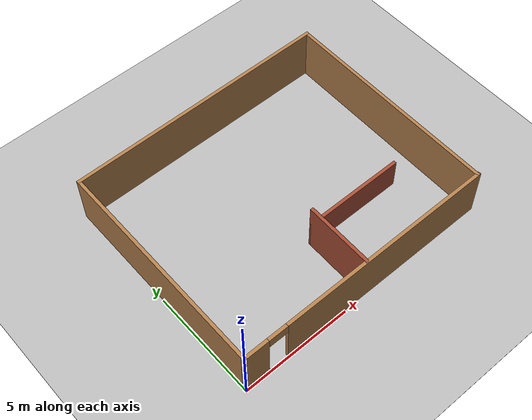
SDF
<sdf version="1.7">
 <world name="default">
  <light name="sun" type="directional">
   <pose>0 0 10 0 -0 0</pose>
   <diffuse>0.8 0.8 0.8 1</diffuse>
   <specular>0.2 0.2 0.2 1</specular>
   <attenuation>
    <range>1000</range>
    <constant>0.9</constant>
    <linear>0.01</linear>
    <quadratic>0.001</quadratic>
   </attenuation>
   <direction>-0.5 0.1 -0.9</direction>
   <spot><inner_angle>0</inner_angle><outer_angle>0</outer_angle><falloff>0</falloff></spot>
  </light>
  <model name="ground_plane">
   <static>1</static>
   <link name="link">
    <collision name="collision">
     <geometry><plane><normal>0 0 1</normal><size>100 100</size></plane></geometry>
     <surface><friction><ode><mu>100</mu><mu2>50</mu2></ode></friction></surface>
    </collision>
    <visual name="visual">
     <cast_shadows>0</cast_shadows>
     <geometry><plane><normal>0 0 1</normal><size>100 100</size></plane></geometry>
     <material>
      <script><uri>file://media/materials/scripts/gazebo.material</uri><name>Gazebo/Grey</name></script>
     </material>
    </visual>
   </link>
  </model>
  <gravity>0 0 -9.8</gravity>
  <magnetic_field>6e-06 2.3e-05 -4.2e-05</magnetic_field>
  <atmosphere type="adiabatic"/>
  <physics type="ode">
   <max_step_size>0.001</max_step_size>
   <real_time_factor>1</real_time_factor>
   <real_time_update_rate>1000</real_time_update_rate>
  </physics>
  <scene><ambient>0.4 0.4 0.4 1</ambient><background>0.7 0.7 0.7 1</background><shadows>1</shadows></scene>
  <audio><device>default</device></audio>
  <spherical_coordinates>
   <surface_model>EARTH_WGS84</surface_model>
   <latitude_deg>0</latitude_deg>
   <longitude_deg>0</longitude_deg>
   <elevation>0</elevation>
   <heading_deg>0</heading_deg>
  </spherical_coordinates>
  <model name="french_door_cafe">
   <pose>6.09427 5.1215 0 0 -0 0</pose>
   <link name="Wall_11">
    <collision name="Wall_11_Collision">
     <geometry><box><size>12.15 0.15 2.5</size></box></geometry>
     <pose>0 0 1.25 0 -0 0</pose>
    </collision>
    <visual name="Wall_11_Visual">
     <pose>0 0 1.25 0 -0 0</pose>
     <geometry><box><size>12.15 0.15 2.5</size></box></geometry>
     <material>
      <script><uri>file://media/materials/scripts/gazebo.material</uri><name>Gazebo/Wood</name></script>
      <ambient>1 1 1 1</ambient>
     </material>
     <meta><layer>0</layer></meta>
    </visual>
    <pose>-0.015295 5.0153 0 0 -0 3.14159</pose>
   </link>
   <link name="Wall_13">
    <collision name="Wall_13_Collision">
     <geometry><box><size>4.65 0.15 1.5</size></box></geometry>
     <pose>0 0 0.75 0 -0 0</pose>
    </collision>
    <visual name="Wall_13_Visual">
     <pose>0 0 0.75 0 -0 0</pose>
     <geometry><box><size>4.65 0.15 1.5</size></box></geometry>
     <material>
      <script><uri>file://media/materials/scripts/gazebo.material</uri><name>Gazebo/Bricks</name></script>
      <ambient>1 1 1 1</ambient>
     </material>
     <meta><layer>0</layer></meta>
    </visual>
    <pose>2.2347 -1.9847 0 0 -0 0</pose>
   </link>
   <link name="Wall_16">
    <collision name="Wall_16_Collision">
     <geometry><box><size>3.1501 0.15 2.5</size></box></geometry>
     <pose>0 0 1.25 0 -0 0</pose>
    </collision>
    <visual name="Wall_16_Visual">
     <pose>0 0 1.25 0 -0 0</pose>
     <geometry><box><size>3.1501 0.15 2.5</size></box></geometry>
     <material>
      <script><uri>file://media/materials/scripts/gazebo.material</uri><name>Gazebo/Bricks</name></script>
      <ambient>1 1 1 1</ambient>
     </material>
     <meta><layer>0</layer></meta>
    </visual>
    <pose>-0.027794 -3.4847 0 0 -0 -1.57913</pose>
   </link>
   <link name="Wall_2">
    <collision name="Wall_2_Collision">
     <geometry><box><size>10.15 0.15 2.5</size></box></geometry>
     <pose>0 0 1.25 0 -0 0</pose>
    </collision>
    <visual name="Wall_2_Visual">
     <pose>0 0 1.25 0 -0 0</pose>
     <geometry><box><size>10.15 0.15 2.5</size></box></geometry>
     <material>
      <script><uri>file://media/materials/scripts/gazebo.material</uri><name>Gazebo/Wood</name></script>
      <ambient>1 1 1 1</ambient>
     </material>
     <meta><layer>0</layer></meta>
    </visual>
    <pose>-6.0153 0.015295 0 0 -0 1.5708</pose>
   </link>
   <link name="Wall_4">
    <collision name="Wall_4_Collision">
     <geometry><box><size>0.18059 0.15 2.5</size></box></geometry>
     <pose>0 0 1.25 0 -0 0</pose>
    </collision>
    <visual name="Wall_4_Visual">
     <pose>0 0 1.25 0 -0 0</pose>
     <geometry><box><size>0.18059 0.15 2.5</size></box></geometry>
     <material>
      <script><uri>file://media/materials/scripts/gazebo.material</uri><name>Gazebo/Grey</name></script>
      <ambient>1 1 1 1</ambient>
     </material>
     <meta><layer>0</layer></meta>
    </visual>
    <pose>-6.0153 -5 0 0 -0 -1.5708</pose>
   </link>
   <link name="Wall_6">
    <pose>0.015295 -5.0153 0 0 -0 0</pose>
    <visual name="Wall_6_Visual_0">
     <pose>-5.50339 0 1.25 0 -0 0</pose>
     <geometry><box><size>1.14322 0.15 2.5</size></box></geometry>
     <material>
      <script><uri>file://media/materials/scripts/gazebo.material</uri><name>Gazebo/Wood</name></script>
      <ambient>1 1 1 1</ambient>
     </material>
     <meta><layer>0</layer></meta>
    </visual>
    <collision name="Wall_6_Collision_0">
     <geometry><box><size>1.14322 0.15 2.5</size></box></geometry>
     <pose>-5.50339 0 1.25 0 -0 0</pose>
    </collision>
    <visual name="Wall_6_Visual_1">
     <pose>1.02161 0 1.25 0 -0 0</pose>
     <geometry><box><size>10.1068 0.15 2.5</size></box></geometry>
     <material>
      <script><uri>file://media/materials/scripts/gazebo.material</uri><name>Gazebo/Wood</name></script>
      <ambient>1 1 1 1</ambient>
     </material>
     <meta><layer>0</layer></meta>
    </visual>
    <collision name="Wall_6_Collision_1">
     <geometry><box><size>10.1068 0.15 2.5</size></box></geometry>
     <pose>1.02161 0 1.25 0 -0 0</pose>
    </collision>
    <visual name="Wall_6_Visual_2">
     <pose>-4.48178 0 2.25 0 -0 0</pose>
     <geometry><box><size>0.9 0.15 0.5</size></box></geometry>
     <material>
      <script><uri>file://media/materials/scripts/gazebo.material</uri><name>Gazebo/Wood</name></script>
      <ambient>1 1 1 1</ambient>
     </material>
     <meta><layer>0</layer></meta>
    </visual>
    <collision name="Wall_6_Collision_2">
     <geometry><box><size>0.9 0.15 0.5</size></box></geometry>
     <pose>-4.48178 0 2.25 0 -0 0</pose>
    </collision>
   </link>
   <link name="Wall_9">
    <collision name="Wall_9_Collision">
     <geometry><box><size>10.1806 0.15 2.5</size></box></geometry>
     <pose>0 0 1.25 0 -0 0</pose>
    </collision>
    <visual name="Wall_9_Visual">
     <pose>0 0 1.25 0 -0 0</pose>
     <geometry><box><size>10.1806 0.15 2.5</size></box></geometry>
     <material>
      <script><uri>file://media/materials/scripts/gazebo.material</uri><name>Gazebo/Wood</name></script>
      <ambient>1 1 1 1</ambient>
     </material>
     <meta><layer>0</layer></meta>
    </visual>
    <pose>5.9847 0 0 0 -0 1.5708</pose>
   </link>
   <static>1</static>
  </model>
  <light name="user_point_light_0" type="point">
   <pose>2.67644 7.07419 1 0 -0 0</pose>
   <diffuse>0.5 0.5 0.5 1</diffuse>
   <specular>0.1 0.1 0.1 1</specular>
   <attenuation>
    <range>20</range>
    <constant>0.5</constant>
    <linear>0.01</linear>
    <quadratic>0.001</quadratic>
   </attenuation>
   <cast_shadows>0</cast_shadows>
   <direction>0 0 -1</direction>
   <spot><inner_angle>0</inner_angle><outer_angle>0</outer_angle><falloff>0</falloff></spot>
  </light>
  <light name="user_point_light_1" type="point">
   <pose>5.55701 7.00976 1 0 -0 0</pose>
   <diffuse>0.5 0.5 0.5 1</diffuse>
   <specular>0.1 0.1 0.1 1</specular>
   <attenuation>
    <range>20</range>
    <constant>0.5</constant>
    <linear>0.01</linear>
    <quadratic>0.001</quadratic>
   </attenuation>
   <cast_shadows>0</cast_shadows>
   <direction>0 0 -1</direction>
   <spot><inner_angle>0</inner_angle><outer_angle>0</outer_angle><falloff>0</falloff></spot>
  </light>
  <light name="user_point_light_2" type="point">
   <pose>8.49214 7.07362 1 0 -0 0</pose>
   <diffuse>0.5 0.5 0.5 1</diffuse>
   <specular>0.1 0.1 0.1 1</specular>
   <attenuation>
    <range>20</range>
    <constant>0.5</constant>
    <linear>0.01</linear>
    <quadratic>0.001</quadratic>
   </attenuation>
   <cast_shadows>0</cast_shadows>
   <direction>0 0 -1</direction>
   <spot><inner_angle>0</inner_angle><outer_angle>0</outer_angle><falloff>0</falloff></spot>
  </light>
  <light name="user_point_light_3" type="point">
   <pose>8.17363 0.848798 1 0 -0 0</pose>
   <diffuse>0.5 0.5 0.5 1</diffuse>
   <specular>0.1 0.1 0.1 1</specular>
   <attenuation>
    <range>20</range>
    <constant>0.5</constant>
    <linear>0.01</linear>
    <quadratic>0.001</quadratic>
   </attenuation>
   <cast_shadows>0</cast_shadows>
   <direction>0 0 -1</direction>
   <spot><inner_angle>0</inner_angle><outer_angle>0</outer_angle><falloff>0</falloff></spot>
  </light>
  <model name="Floor">
   <link name="main">
    <pose>0 0 0.01 0 -0 0</pose>
    <collision name="main_Collision"><geometry><box><size>40 40 0.01</size></box></geometry></collision>
    <visual name="main_Visual">
     <geometry><box><size>40 40 0.01</size></box></geometry>
     <material>
      <script>
       <uri>model://Floor/materials/scripts</uri>
       <uri>model://Floor/materials/textures</uri>
       <name>floor</name>
      </script>
     </material>
    </visual>
   </link>
   <static>1</static>
   <pose>4.8954 7.25194 0 0 -0 0</pose>
  </model>
 </world>
</sdf>
